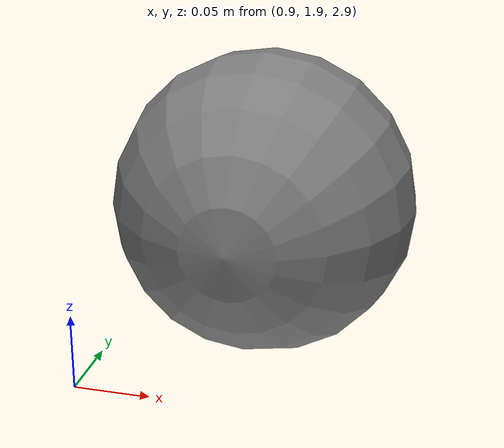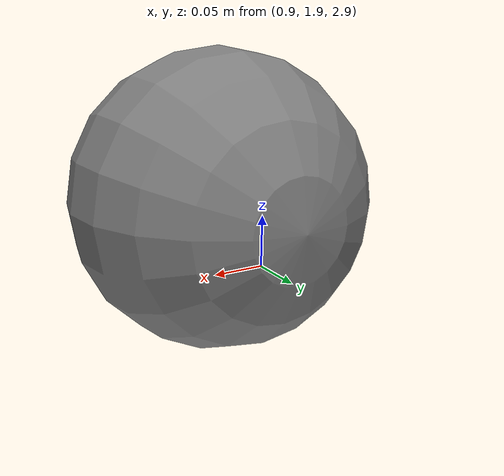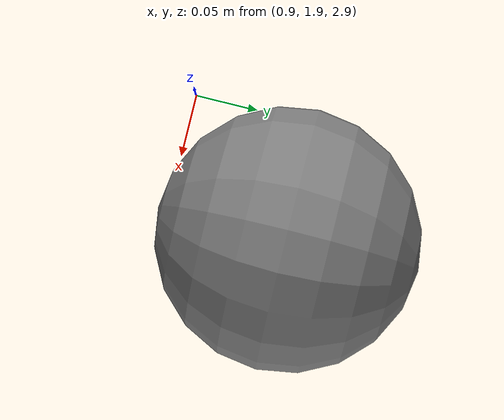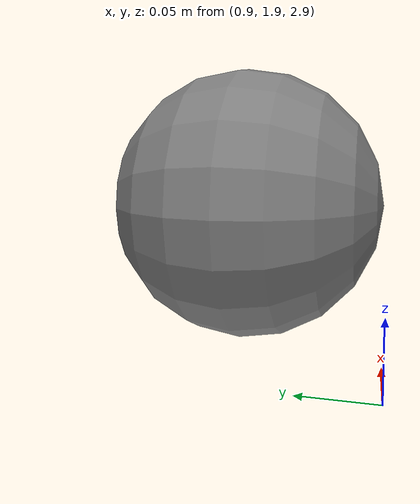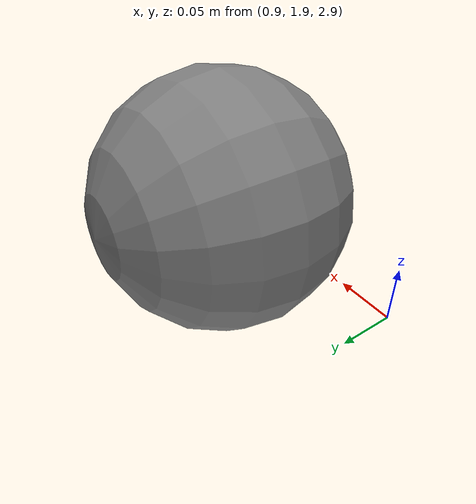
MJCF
<mujoco model="qpos_spring_free">
            <worldbody>
                <body name="b1" pos="1 2 3" quat="0.707107 0.707107 0 0">
                    <freejoint name="j1"/>
                    <geom type="sphere" size="0.1" mass="1.0"/>
                </body>
            </worldbody>
        </mujoco>
